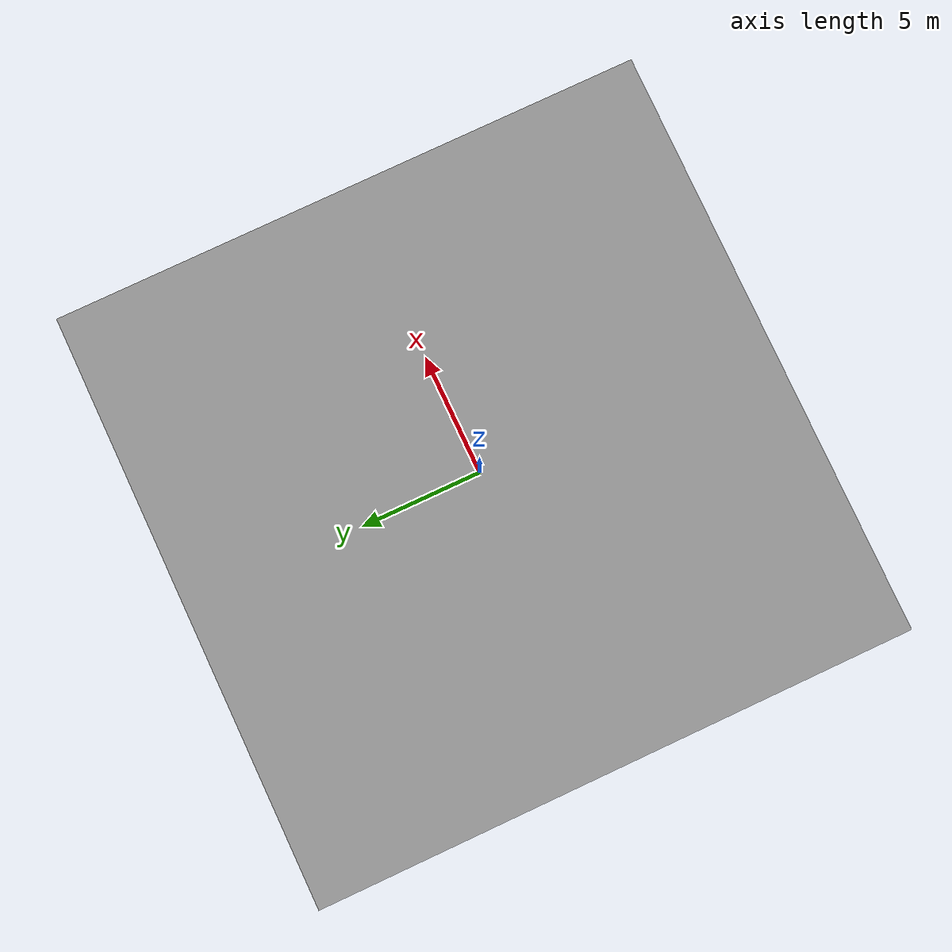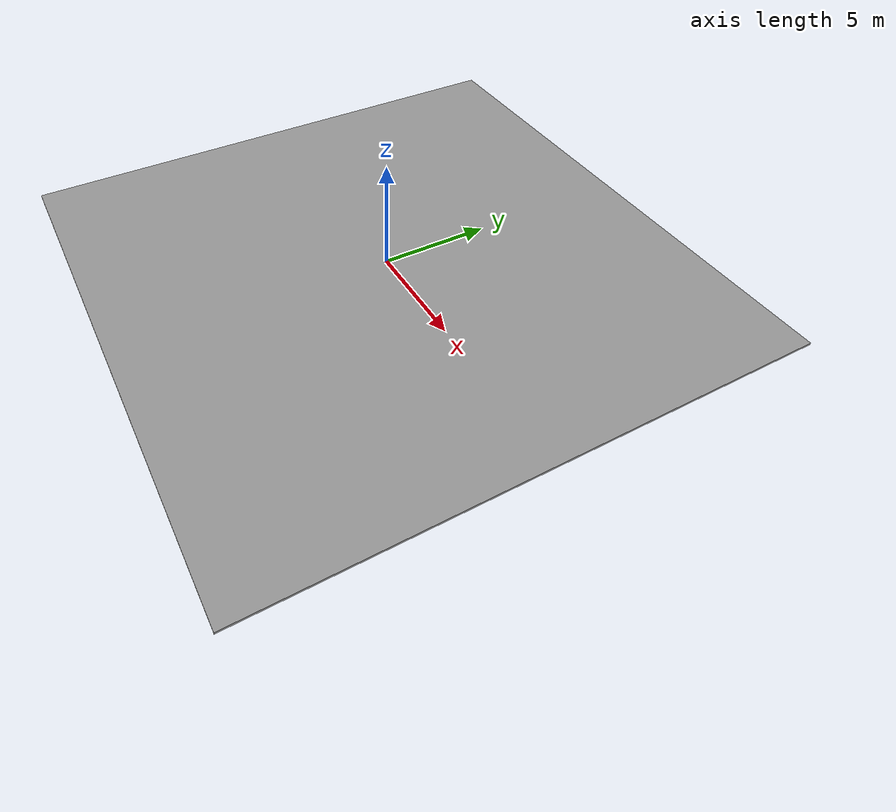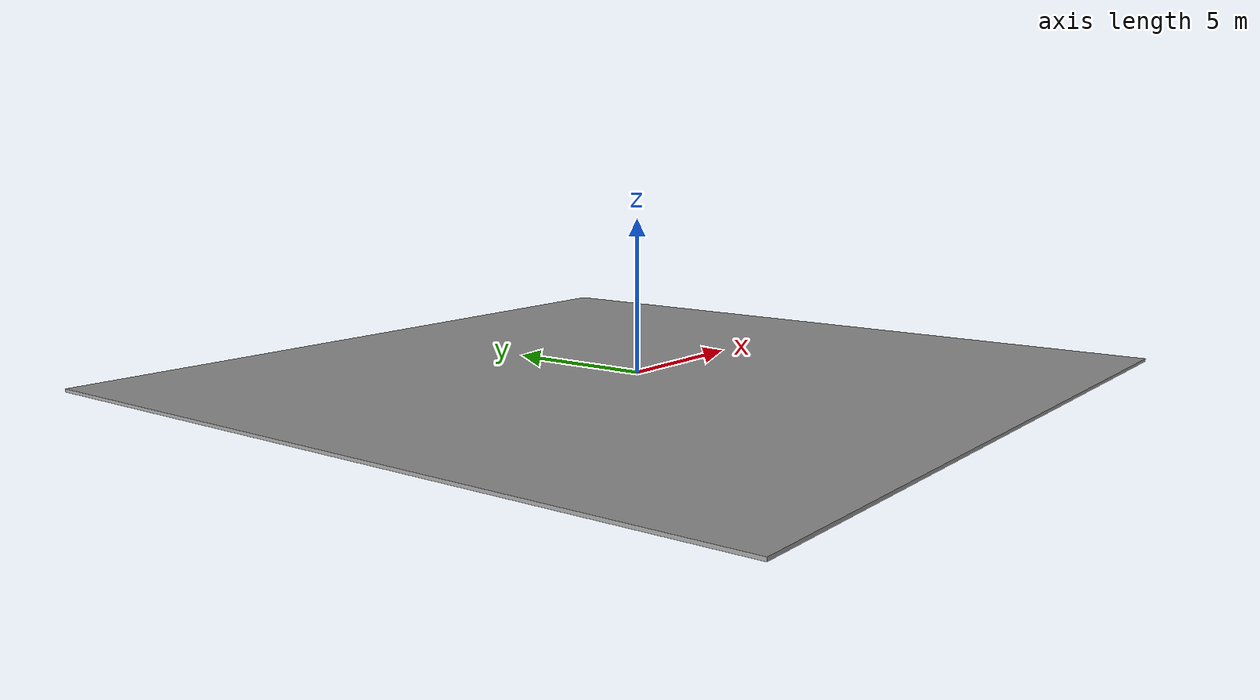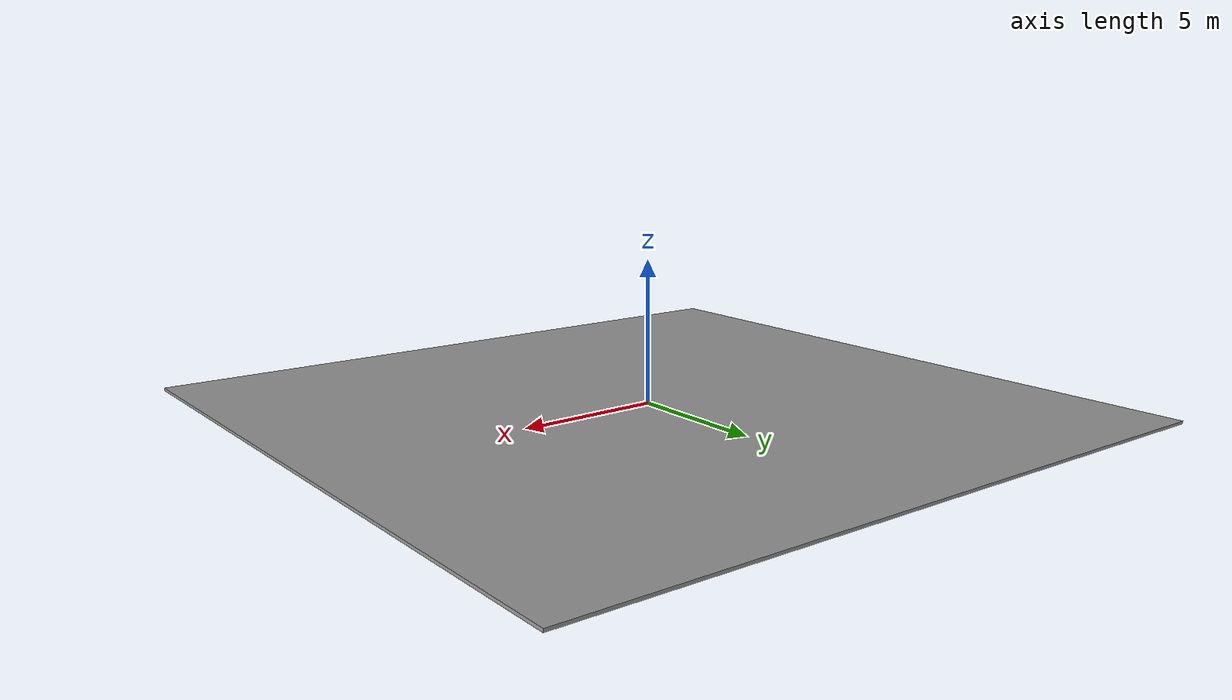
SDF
<?xml version="1.0" encoding="UTF-8"?>
<sdf version="1.9">
  <model name="granite_ground">
    <static>true</static>
    <link name="link">
      <!-- Top surface sits at z=0; box is 0.1 thick, centred at z=-0.05 -->
      <pose>0 0 -0.05 0 0 0</pose>

      <collision name="collision">
        <geometry>
          <box><size>25 25 0.1</size></box>
        </geometry>
        <surface>
          <friction>
            <ode><mu>1.0</mu><mu2>1.0</mu2></ode>
          </friction>
        </surface>
      </collision>

      <visual name="visual">
        <geometry>
          <box><size>25 25 0.1</size></box>
        </geometry>
        <material>
          <!-- Plain-colour fallback -->
          <ambient>0.5 0.5 0.5 1</ambient>
          <diffuse>0.6 0.6 0.6 1</diffuse>
          <specular>0.1 0.1 0.1 1</specular>
          <!-- PBR albedo map; use the full model:// URI so the find
               callback resolves it regardless of CWD -->
          <pbr>
            <metal>
              <albedo_map>model://granite_ground/materials/textures/granite.png</albedo_map>
              <metalness>0.0</metalness>
              <roughness>0.9</roughness>
            </metal>
          </pbr>
        </material>
      </visual>
    </link>
  </model>
</sdf>
